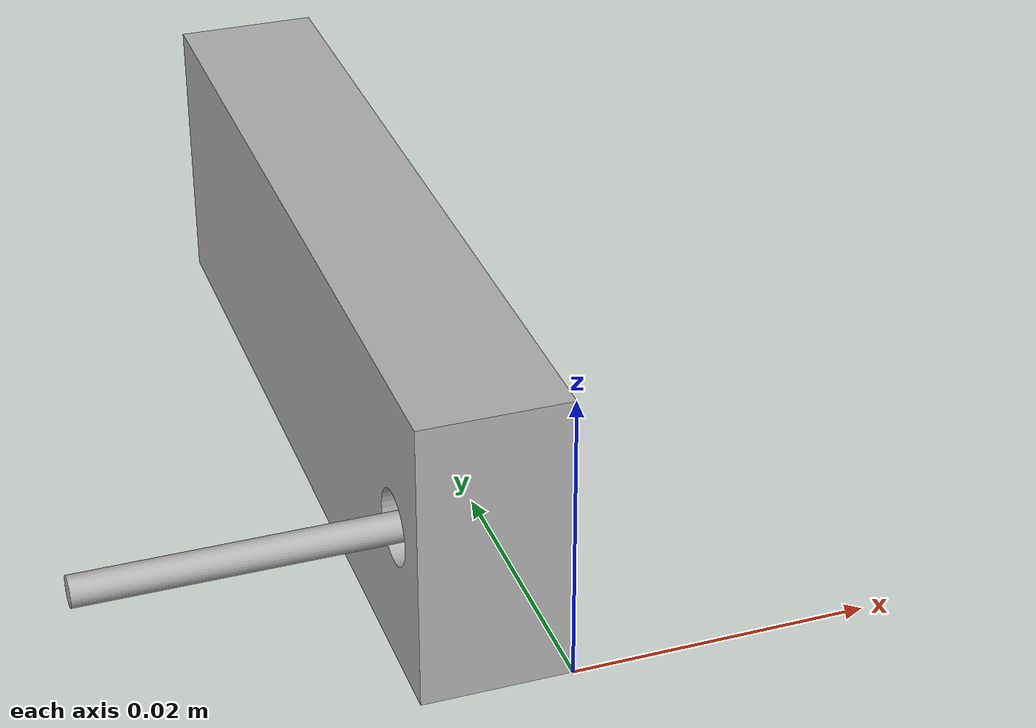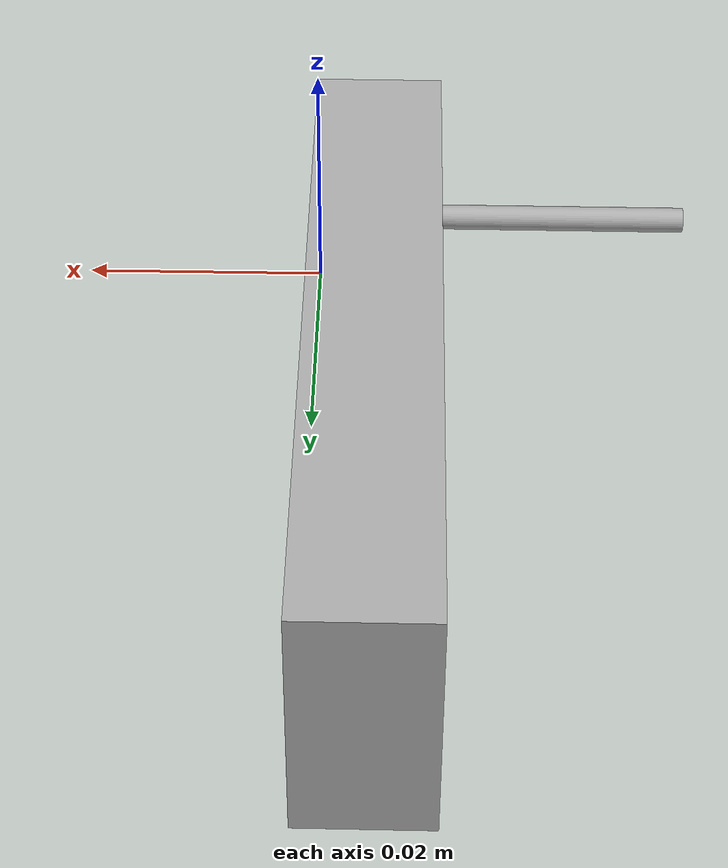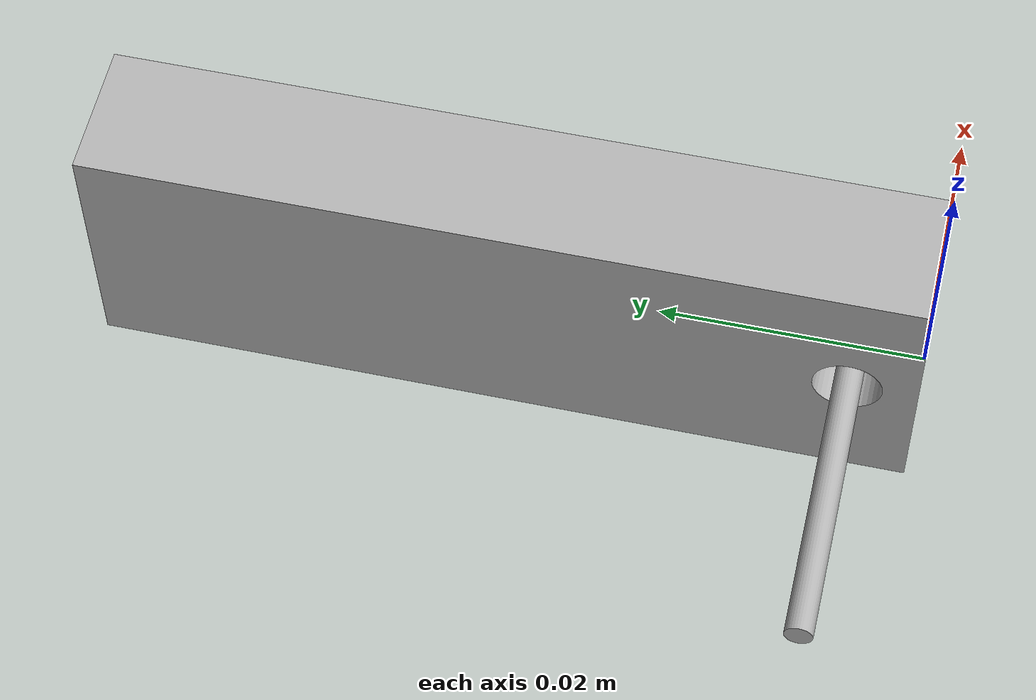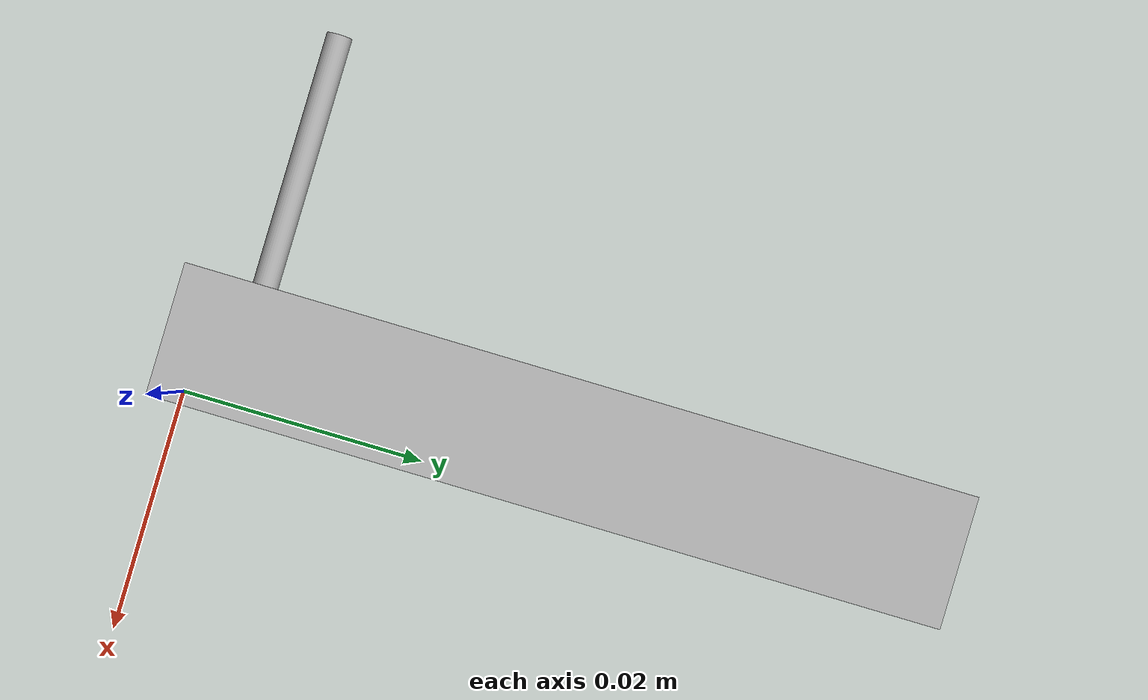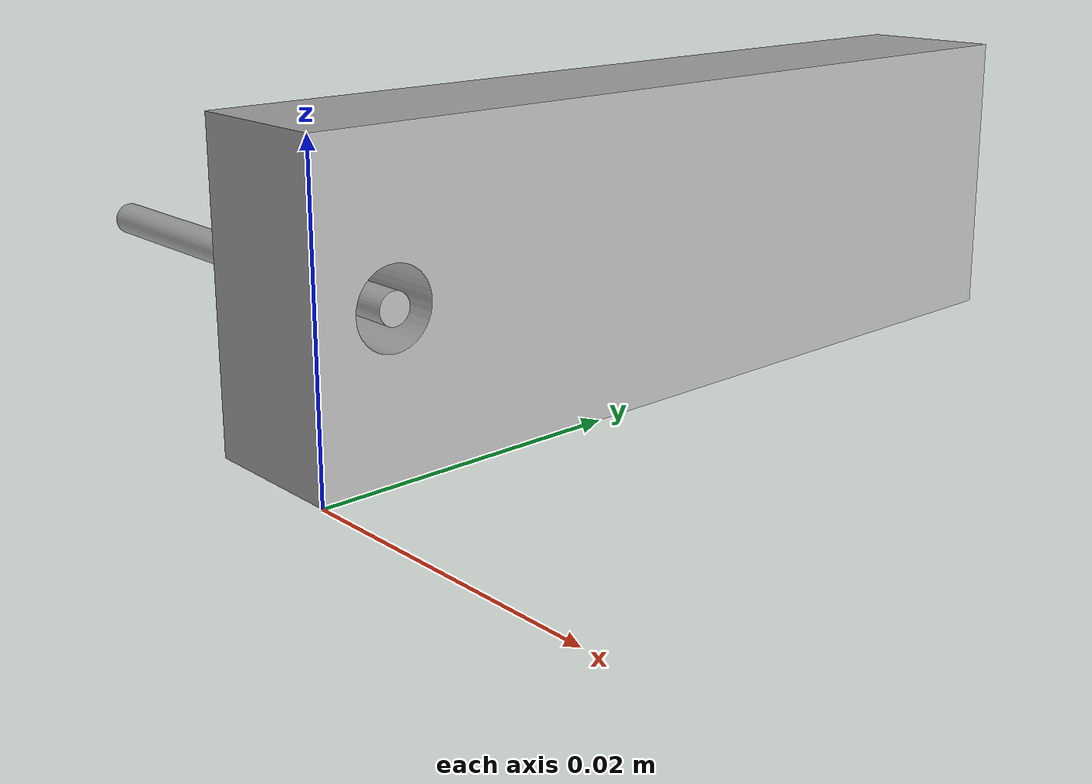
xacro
<?xml version="1.0" ?>
<robot name="TEST" xmlns:xacro="http://www.ros.org/wiki/xacro">

<xacro:include filename="../urdf/materials.xacro" />
<xacro:include filename="../urdf/TEST.trans" />
<xacro:include filename="../urdf/TEST.gazebo" />
<link name="base_link">
  <inertial>
    <origin xyz="-0.015 0.0050000000001045675 0.009999999999999998" rpy="0 0 0"/>
    <mass value="0.0007398450699204277"/>
    <inertia ixx="0.0" iyy="0.0" izz="0.0" ixy="0.0" iyz="-0.0" ixz="0.0"/>
  </inertial>
  <visual>
    <origin xyz="0 0 0" rpy="0 0 0"/>
    <geometry>
      <mesh filename="../meshes/base_link.stl" scale="0.001 0.001 0.001"/>
    </geometry>
    <material name="silver"/>
  </visual>
  <collision>
    <origin xyz="0 0 0" rpy="0 0 0"/>
    <geometry>
      <mesh filename="../meshes/base_link.stl" scale="0.001 0.001 0.001"/>
    </geometry>
  </collision>
</link>

<link name="link_1">
  <inertial>
    <origin xyz="-0.005 0.025415866137189564 0.0" rpy="0 0 0"/>
    <mass value="0.09265865610433244"/>
    <inertia ixx="3e-05" iyy="4e-06" izz="2.8e-05" ixy="0.0" iyz="-0.0" ixz="-0.0"/>
  </inertial>
  <visual>
    <origin xyz="-0.0 -0.005 -0.01" rpy="0 0 0"/>
    <geometry>
      <mesh filename="../meshes/link_1.stl" scale="0.001 0.001 0.001"/>
    </geometry>
    <material name="silver"/>
  </visual>
  <collision>
    <origin xyz="-0.0 -0.005 -0.01" rpy="0 0 0"/>
    <geometry>
      <mesh filename="../meshes/link_1.stl" scale="0.001 0.001 0.001"/>
    </geometry>
  </collision>
</link>

<joint name="Revolute 1" type="continuous">
  <origin xyz="0.0 0.005 0.01" rpy="0 0 0"/>
  <parent link="base_link"/>
  <child link="link_1"/>
  <axis xyz="1.0 0.0 0.0"/>
</joint>

</robot>

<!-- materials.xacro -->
<robot name="TEST" xmlns:xacro="http://www.ros.org/wiki/xacro" >

<material name="silver">
  <color rgba="0.700 0.700 0.700 1.000"/>
</material>

</robot>

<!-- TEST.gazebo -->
<robot name="TEST" xmlns:xacro="http://www.ros.org/wiki/xacro" >

<xacro:property name="body_color" value="Gazebo/Silver" />

<gazebo>
  <plugin name="control" filename="libgazebo_ros_control.so"/>
</gazebo>
<gazebo reference="base_link">
  <material>${body_color}</material>
  <mu1>0.2</mu1>
  <mu2>0.2</mu2>
  <selfCollide>true</selfCollide>
  <gravity>true</gravity>
</gazebo>

<gazebo reference="link_1">
  <material>${body_color}</material>
  <mu1>0.2</mu1>
  <mu2>0.2</mu2>
  <selfCollide>true</selfCollide>
</gazebo>

</robot>
